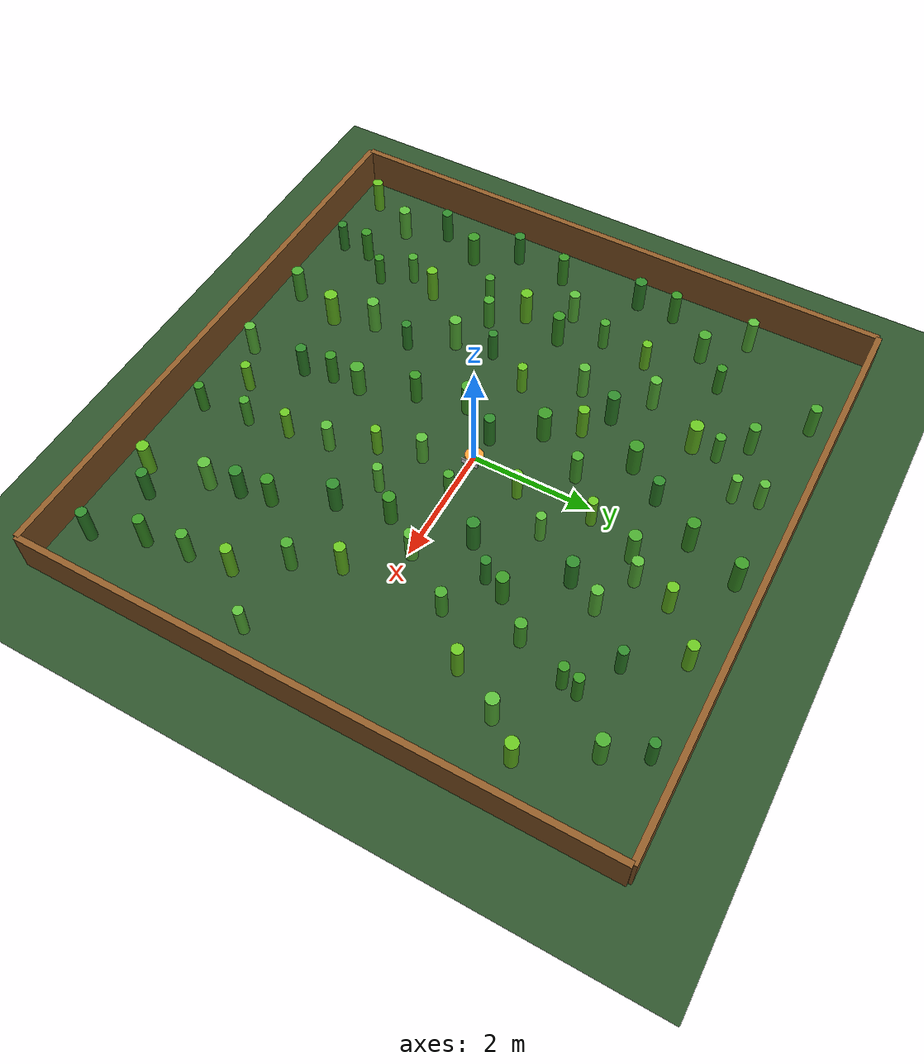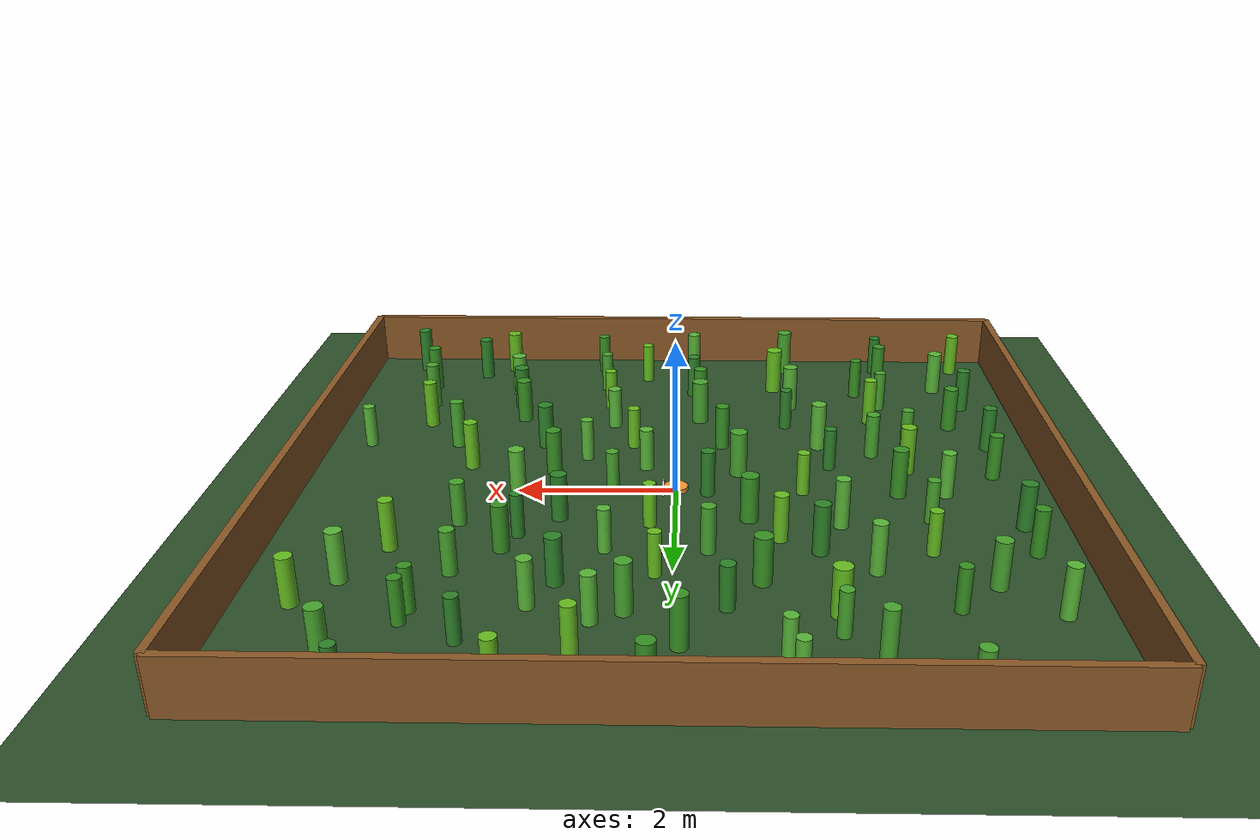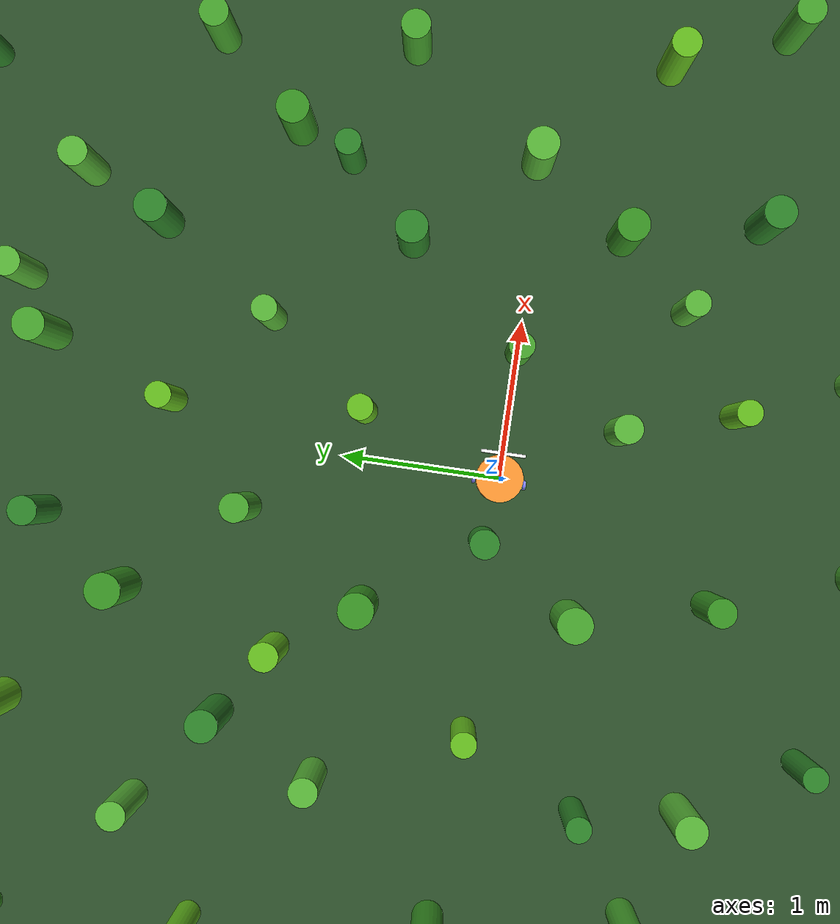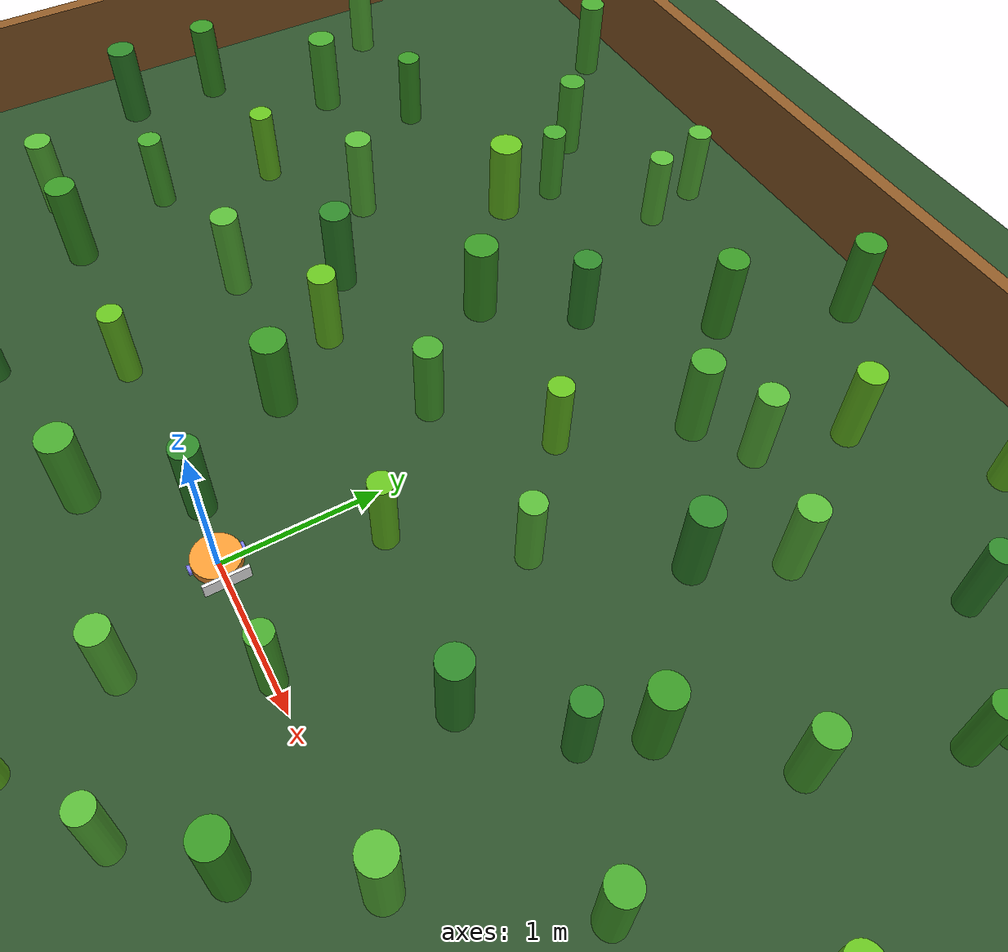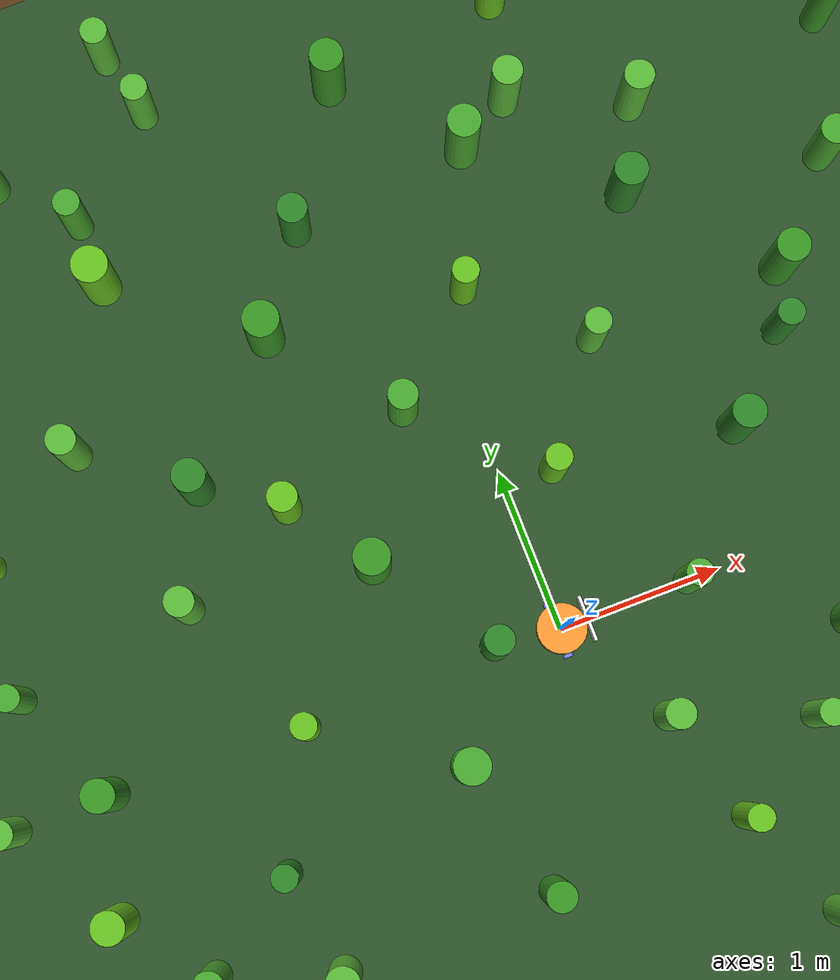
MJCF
<mujoco>
  <!--
    bamboo_scene.xml
    竹林场景：10 x 10 m 地面，四周围墙，35 根圆柱形竹子随机分布。
    起点：(-4.0, 4.0)   终点：(3.8, 0.0)
    两端各保留约 1.0 m 净空间。
  -->
  <compiler autolimits="true"/>

  <asset>
    <!-- 青绿色草地纹理 -->
    <texture name="grass" type="2d" builtin="checker" width="512" height="512"
             rgb1=".15 .28 .15" rgb2=".20 .35 .18"/>
    <material name="grass" texture="grass" texrepeat="6 6" texuniform="true" reflectance=".1"/>

    <!-- 竹竿纹理（偏黄绿棋盘） -->
    <texture name="bamboo_tex" type="2d" builtin="checker" width="64" height="256"
             rgb1=".30 .62 .22" rgb2=".42 .72 .28"/>
    <material name="bamboo_mat" texture="bamboo_tex" texrepeat="1 4" reflectance=".05"/>

    <mesh name="chasis" scale=".01 .006 .0015"
      vertex=" 9   2   0
              -10  10  10
               9  -2   0
               10  3  -10
               10 -3  -10
              -8   10 -10
              -10 -10  10
              -8  -10 -10
              -5   0   20"/>
  </asset>

  <default>
    <joint damping=".008" actuatorfrcrange="-4 4"/>
    <default class="wheel">
      <geom type="cylinder" size=".03 .01" rgba=".5 .5 1 1"/>
    </default>
    <default class="decor">
      <site type="box" rgba=".5 1 .5 1"/>
    </default>
  </default>

  <worldbody>
    <!-- 10×10 m 草地地面，以 (0,0) 为中心 -->
    <geom name="floor" type="plane" size="6 6 .01" material="grass" pos="0 0 0"/>

    <!-- ──────────────── Robot ──────────────── -->
    <body name="pusher1" pos="0 0 .03">
      <freejoint/>
      <geom name="base"
            type="cylinder"
            pos="0 0 0.03"
            size="0.15 0.03"
            rgba="1.0 0.6 0.2 1"/>
      <geom type="box" pos="0.16 0 0.03" size="0.01 0.14 0.05" rgba="1 1 1 1"/>
      <geom name="front wheel" pos="0.12 0 -.015"
            type="sphere" size=".015" condim="1" priority="1"/>
      <body name="left wheel" pos="-.02 .16 0" zaxis="0 1 0">
        <joint name="left"/>
        <geom class="wheel"/>
        <site class="decor" size=".006 .025 .012"/>
        <site class="decor" size=".025 .006 .012"/>
      </body>
      <body name="right wheel" pos="-.02 -.16 0" zaxis="0 1 0">
        <joint name="right"/>
        <geom class="wheel"/>
        <site class="decor" size=".006 .025 .012"/>
        <site class="decor" size=".025 .006 .012"/>
      </body>
    </body>

    <!-- ──────────────── 四周围墙 ──────────────── -->
    <geom name="wall_north" type="box" pos=" 0.0  4.8 0.35" size="4.8 0.05 0.35" rgba=".55 .35 .15 1"/>
    <geom name="wall_south" type="box" pos=" 0.0 -4.8 0.35" size="4.8 0.05 0.35" rgba=".55 .35 .15 1"/>
    <geom name="wall_west"  type="box" pos="-4.8  0.0 0.35" size="0.05 4.8 0.35" rgba=".55 .35 .15 1"/>
    <geom name="wall_east"  type="box" pos=" 4.8  0.0 0.35" size="0.05 4.8 0.35" rgba=".55 .35 .15 1"/>

    <!-- ── 原有排 A  y ≈ 4.4（最北，起点以南）── -->
    <geom name="bam_01" type="cylinder" pos="-3.00  4.40 0.30" size="0.09 0.30" rgba=".28 .65 .18 1" material="bamboo_mat"/>
    <geom name="bam_02" type="cylinder" pos="-1.30  4.20 0.28" size="0.08 0.28" rgba=".35 .72 .22 1" material="bamboo_mat"/>
    <geom name="bam_03" type="cylinder" pos=" 0.20  4.40 0.32" size="0.10 0.32" rgba=".22 .58 .14 1" material="bamboo_mat"/>
    <geom name="bam_04" type="cylinder" pos=" 1.70  4.30 0.30" size="0.09 0.30" rgba=".40 .75 .12 1" material="bamboo_mat"/>
    <geom name="bam_05" type="cylinder" pos=" 3.20  4.40 0.28" size="0.08 0.28" rgba=".18 .52 .16 1" material="bamboo_mat"/>

    <!-- ── 原有排 B  y ≈ 3.5 ── -->
    <geom name="bam_06" type="cylinder" pos="-2.20  3.70 0.30" size="0.09 0.30" rgba=".28 .65 .18 1" material="bamboo_mat"/>
    <geom name="bam_07" type="cylinder" pos="-1.20  3.80 0.28" size="0.08 0.28" rgba=".35 .72 .22 1" material="bamboo_mat"/>
    <geom name="bam_08" type="cylinder" pos="-0.10  3.55 0.32" size="0.10 0.32" rgba=".22 .58 .14 1" material="bamboo_mat"/>
    <geom name="bam_09" type="cylinder" pos=" 1.00  3.70 0.30" size="0.09 0.30" rgba=".40 .75 .12 1" material="bamboo_mat"/>
    <geom name="bam_10" type="cylinder" pos=" 2.20  3.50 0.28" size="0.08 0.28" rgba=".18 .52 .16 1" material="bamboo_mat"/>
    <geom name="bam_11" type="cylinder" pos=" 3.50  3.80 0.30" size="0.10 0.30" rgba=".28 .65 .18 1" material="bamboo_mat"/>

    <!-- ── 补充排 C  y ≈ 2.9（插在 B/D 之间）── -->
    <geom name="bam_12" type="cylinder" pos="-4.20  2.90 0.32" size="0.09 0.32" rgba=".35 .72 .22 1" material="bamboo_mat"/>
    <geom name="bam_13" type="cylinder" pos="-3.10  2.80 0.28" size="0.08 0.28" rgba=".22 .58 .14 1" material="bamboo_mat"/>
    <geom name="bam_14" type="cylinder" pos="-1.80  2.90 0.30" size="0.11 0.30" rgba=".40 .75 .12 1" material="bamboo_mat"/>
    <geom name="bam_15" type="cylinder" pos="-0.60  2.80 0.28" size="0.09 0.28" rgba=".18 .52 .16 1" material="bamboo_mat"/>
    <geom name="bam_16" type="cylinder" pos=" 0.50  2.90 0.32" size="0.10 0.32" rgba=".28 .65 .18 1" material="bamboo_mat"/>
    <geom name="bam_17" type="cylinder" pos=" 1.55  2.80 0.30" size="0.09 0.30" rgba=".35 .72 .22 1" material="bamboo_mat"/>
    <geom name="bam_18" type="cylinder" pos=" 2.80  2.90 0.28" size="0.08 0.28" rgba=".22 .58 .14 1" material="bamboo_mat"/>
    <geom name="bam_19" type="cylinder" pos=" 4.10  2.80 0.30" size="0.10 0.30" rgba=".40 .75 .12 1" material="bamboo_mat"/>

    <!-- ── 原有排 D  y ≈ 2.1 ── -->
    <geom name="bam_20" type="cylinder" pos="-3.60  2.30 0.30" size="0.10 0.30" rgba=".28 .65 .18 1" material="bamboo_mat"/>
    <geom name="bam_21" type="cylinder" pos="-2.30  2.00 0.32" size="0.09 0.32" rgba=".35 .72 .22 1" material="bamboo_mat"/>
    <geom name="bam_22" type="cylinder" pos="-1.00  2.25 0.30" size="0.11 0.30" rgba=".22 .58 .14 1" material="bamboo_mat"/>
    <geom name="bam_23" type="cylinder" pos=" 0.20  2.10 0.28" size="0.08 0.28" rgba=".40 .75 .12 1" material="bamboo_mat"/>
    <geom name="bam_24" type="cylinder" pos=" 1.30  2.30 0.30" size="0.10 0.30" rgba=".18 .52 .16 1" material="bamboo_mat"/>
    <geom name="bam_25" type="cylinder" pos=" 2.50  2.10 0.28" size="0.09 0.28" rgba=".28 .65 .18 1" material="bamboo_mat"/>
    <geom name="bam_26" type="cylinder" pos=" 3.70  2.30 0.32" size="0.10 0.32" rgba=".35 .72 .22 1" material="bamboo_mat"/>

    <!-- ── 补充排 E  y ≈ 1.55（插在 D/F 之间）── -->
    <geom name="bam_27" type="cylinder" pos="-4.20  1.55 0.30" size="0.09 0.30" rgba=".22 .58 .14 1" material="bamboo_mat"/>
    <geom name="bam_28" type="cylinder" pos="-3.00  1.55 0.28" size="0.08 0.28" rgba=".40 .75 .12 1" material="bamboo_mat"/>
    <geom name="bam_29" type="cylinder" pos="-1.70  1.55 0.32" size="0.10 0.32" rgba=".18 .52 .16 1" material="bamboo_mat"/>
    <geom name="bam_30" type="cylinder" pos="-0.40  1.55 0.30" size="0.09 0.30" rgba=".28 .65 .18 1" material="bamboo_mat"/>
    <geom name="bam_31" type="cylinder" pos=" 0.80  1.55 0.28" size="0.08 0.28" rgba=".35 .72 .22 1" material="bamboo_mat"/>
    <geom name="bam_32" type="cylinder" pos=" 2.00  1.55 0.30" size="0.10 0.30" rgba=".22 .58 .14 1" material="bamboo_mat"/>
    <geom name="bam_33" type="cylinder" pos=" 3.30  1.55 0.32" size="0.09 0.32" rgba=".40 .75 .12 1" material="bamboo_mat"/>

    <!-- ── 原有排 F  y ≈ 0.75（避开终点）── -->
    <geom name="bam_34" type="cylinder" pos="-4.20  0.90 0.30" size="0.10 0.30" rgba=".18 .52 .16 1" material="bamboo_mat"/>
    <geom name="bam_35" type="cylinder" pos="-3.10  0.75 0.28" size="0.08 0.28" rgba=".28 .65 .18 1" material="bamboo_mat"/>
    <geom name="bam_36" type="cylinder" pos="-2.00  0.90 0.32" size="0.09 0.32" rgba=".35 .72 .22 1" material="bamboo_mat"/>
    <geom name="bam_37" type="cylinder" pos="-0.90  0.75 0.30" size="0.11 0.30" rgba=".22 .58 .14 1" material="bamboo_mat"/>
    <geom name="bam_38" type="cylinder" pos=" 0.30  0.90 0.28" size="0.08 0.28" rgba=".40 .75 .12 1" material="bamboo_mat"/>
    <geom name="bam_39" type="cylinder" pos=" 1.40  0.75 0.30" size="0.10 0.30" rgba=".18 .52 .16 1" material="bamboo_mat"/>
    <geom name="bam_40" type="cylinder" pos=" 2.60  0.90 0.28" size="0.09 0.28" rgba=".28 .65 .18 1" material="bamboo_mat"/>

    <!-- ── 补充排 G  y ≈ 0.0（避开起点 -4.5,0.0 和终点 4.3,0.0）── -->
    <geom name="bam_41" type="cylinder" pos="-3.40  0.05 0.30" size="0.09 0.30" rgba=".35 .72 .22 1" material="bamboo_mat"/>
    <geom name="bam_42" type="cylinder" pos="-2.80  0.05 0.32" size="0.10 0.32" rgba=".22 .58 .14 1" material="bamboo_mat"/>
    <geom name="bam_43" type="cylinder" pos="-1.60  0.00 0.28" size="0.08 0.28" rgba=".40 .75 .12 1" material="bamboo_mat"/>
    <geom name="bam_44" type="cylinder" pos="-0.40  0.05 0.30" size="0.09 0.30" rgba=".18 .52 .16 1" material="bamboo_mat"/>
    <geom name="bam_45" type="cylinder" pos=" 0.80  0.00 0.28" size="0.08 0.28" rgba=".28 .65 .18 1" material="bamboo_mat"/>
    <geom name="bam_46" type="cylinder" pos=" 2.00  0.05 0.30" size="0.10 0.30" rgba=".35 .72 .22 1" material="bamboo_mat"/>

    <!-- ── 原有排 H  y ≈ -0.7（避开终点）── -->
    <geom name="bam_47" type="cylinder" pos="-4.10 -0.50 0.30" size="0.09 0.30" rgba=".22 .58 .14 1" material="bamboo_mat"/>
    <geom name="bam_48" type="cylinder" pos="-3.00 -0.65 0.32" size="0.10 0.32" rgba=".40 .75 .12 1" material="bamboo_mat"/>
    <geom name="bam_49" type="cylinder" pos="-2.00 -0.75 0.28" size="0.08 0.28" rgba=".18 .52 .16 1" material="bamboo_mat"/>
    <geom name="bam_50" type="cylinder" pos="-0.80 -0.55 0.30" size="0.11 0.30" rgba=".28 .65 .18 1" material="bamboo_mat"/>
    <geom name="bam_51" type="cylinder" pos=" 0.40 -0.70 0.28" size="0.09 0.28" rgba=".35 .72 .22 1" material="bamboo_mat"/>
    <geom name="bam_52" type="cylinder" pos=" 1.60 -0.55 0.30" size="0.10 0.30" rgba=".22 .58 .14 1" material="bamboo_mat"/>
    <geom name="bam_53" type="cylinder" pos=" 2.70 -0.70 0.32" size="0.09 0.32" rgba=".40 .75 .12 1" material="bamboo_mat"/>

    <!-- ── 补充排 I  y ≈ -1.4 ── -->
    <geom name="bam_54" type="cylinder" pos="-4.20 -1.40 0.30" size="0.09 0.30" rgba=".18 .52 .16 1" material="bamboo_mat"/>
    <geom name="bam_55" type="cylinder" pos="-3.10 -1.40 0.28" size="0.08 0.28" rgba=".28 .65 .18 1" material="bamboo_mat"/>
    <geom name="bam_56" type="cylinder" pos="-1.90 -1.40 0.32" size="0.10 0.32" rgba=".35 .72 .22 1" material="bamboo_mat"/>
    <geom name="bam_57" type="cylinder" pos="-0.60 -1.40 0.30" size="0.09 0.30" rgba=".22 .58 .14 1" material="bamboo_mat"/>
    <geom name="bam_58" type="cylinder" pos=" 0.60 -1.40 0.28" size="0.08 0.28" rgba=".40 .75 .12 1" material="bamboo_mat"/>
    <geom name="bam_59" type="cylinder" pos=" 1.80 -1.40 0.30" size="0.10 0.30" rgba=".18 .52 .16 1" material="bamboo_mat"/>
    <geom name="bam_60" type="cylinder" pos=" 3.00 -1.40 0.32" size="0.09 0.32" rgba=".28 .65 .18 1" material="bamboo_mat"/>
    <geom name="bam_61" type="cylinder" pos=" 4.20 -1.40 0.28" size="0.08 0.28" rgba=".35 .72 .22 1" material="bamboo_mat"/>

    <!-- ── 原有排 J  y ≈ -2.1 ── -->
    <geom name="bam_62" type="cylinder" pos="-3.80 -2.10 0.30" size="0.10 0.30" rgba=".22 .58 .14 1" material="bamboo_mat"/>
    <geom name="bam_63" type="cylinder" pos="-2.70 -2.30 0.32" size="0.09 0.32" rgba=".40 .75 .12 1" material="bamboo_mat"/>
    <geom name="bam_64" type="cylinder" pos="-1.50 -2.10 0.28" size="0.08 0.28" rgba=".18 .52 .16 1" material="bamboo_mat"/>
    <geom name="bam_65" type="cylinder" pos="-0.30 -2.30 0.30" size="0.11 0.30" rgba=".28 .65 .18 1" material="bamboo_mat"/>
    <geom name="bam_66" type="cylinder" pos=" 0.90 -2.10 0.28" size="0.09 0.28" rgba=".35 .72 .22 1" material="bamboo_mat"/>
    <geom name="bam_67" type="cylinder" pos=" 2.20 -2.30 0.30" size="0.10 0.30" rgba=".22 .58 .14 1" material="bamboo_mat"/>
    <geom name="bam_68" type="cylinder" pos=" 3.50 -2.10 0.32" size="0.09 0.32" rgba=".40 .75 .12 1" material="bamboo_mat"/>

    <!-- ── 补充排 K  y ≈ -2.8 ── -->
    <geom name="bam_69" type="cylinder" pos="-4.10 -2.80 0.30" size="0.09 0.30" rgba=".18 .52 .16 1" material="bamboo_mat"/>
    <geom name="bam_70" type="cylinder" pos="-2.90 -2.80 0.28" size="0.08 0.28" rgba=".28 .65 .18 1" material="bamboo_mat"/>
    <geom name="bam_71" type="cylinder" pos="-1.60 -2.80 0.32" size="0.10 0.32" rgba=".35 .72 .22 1" material="bamboo_mat"/>
    <geom name="bam_72" type="cylinder" pos="-0.30 -2.80 0.30" size="0.09 0.30" rgba=".22 .58 .14 1" material="bamboo_mat"/>
    <geom name="bam_73" type="cylinder" pos=" 1.00 -2.80 0.28" size="0.08 0.28" rgba=".40 .75 .12 1" material="bamboo_mat"/>
    <geom name="bam_74" type="cylinder" pos=" 2.30 -2.80 0.30" size="0.10 0.30" rgba=".18 .52 .16 1" material="bamboo_mat"/>
    <geom name="bam_75" type="cylinder" pos=" 3.60 -2.80 0.32" size="0.09 0.32" rgba=".28 .65 .18 1" material="bamboo_mat"/>

    <!-- ── 原有排 L  y ≈ -3.5 ── -->
    <geom name="bam_76" type="cylinder" pos="-3.80 -3.50 0.30" size="0.10 0.30" rgba=".35 .72 .22 1" material="bamboo_mat"/>
    <geom name="bam_77" type="cylinder" pos="-2.60 -3.30 0.28" size="0.08 0.28" rgba=".22 .58 .14 1" material="bamboo_mat"/>
    <geom name="bam_78" type="cylinder" pos="-1.40 -3.50 0.32" size="0.11 0.32" rgba=".40 .75 .12 1" material="bamboo_mat"/>
    <geom name="bam_79" type="cylinder" pos="-0.20 -3.30 0.30" size="0.09 0.30" rgba=".18 .52 .16 1" material="bamboo_mat"/>
    <geom name="bam_80" type="cylinder" pos=" 1.10 -3.50 0.28" size="0.08 0.28" rgba=".28 .65 .18 1" material="bamboo_mat"/>
    <geom name="bam_81" type="cylinder" pos=" 2.40 -3.30 0.30" size="0.10 0.30" rgba=".35 .72 .22 1" material="bamboo_mat"/>
    <geom name="bam_82" type="cylinder" pos=" 3.70 -3.50 0.32" size="0.09 0.32" rgba=".22 .58 .14 1" material="bamboo_mat"/>

    <!-- ── 最南排 M  y ≈ -4.3 ── -->
    <geom name="bam_83" type="cylinder" pos="-4.20 -4.30 0.30" size="0.09 0.30" rgba=".40 .75 .12 1" material="bamboo_mat"/>
    <geom name="bam_84" type="cylinder" pos="-3.00 -4.30 0.28" size="0.08 0.28" rgba=".18 .52 .16 1" material="bamboo_mat"/>
    <geom name="bam_85" type="cylinder" pos="-1.60 -4.30 0.32" size="0.10 0.32" rgba=".28 .65 .18 1" material="bamboo_mat"/>
    <geom name="bam_86" type="cylinder" pos="-0.20 -4.30 0.30" size="0.09 0.30" rgba=".35 .72 .22 1" material="bamboo_mat"/>
    <geom name="bam_87" type="cylinder" pos=" 1.20 -4.30 0.28" size="0.08 0.28" rgba=".22 .58 .14 1" material="bamboo_mat"/>
    <geom name="bam_88" type="cylinder" pos=" 2.60 -4.30 0.30" size="0.10 0.30" rgba=".40 .75 .12 1" material="bamboo_mat"/>
    <geom name="bam_89" type="cylinder" pos=" 4.00 -4.30 0.32" size="0.09 0.32" rgba=".18 .52 .16 1" material="bamboo_mat"/>

    <!-- ── 散点补充（进一步填密）── -->
    <geom name="bam_90" type="cylinder" pos="-1.80  3.30 0.28" size="0.08 0.28" rgba=".28 .65 .18 1" material="bamboo_mat"/>
    <geom name="bam_91" type="cylinder" pos=" 0.85  3.10 0.30" size="0.09 0.30" rgba=".35 .72 .22 1" material="bamboo_mat"/>
    <geom name="bam_92" type="cylinder" pos=" 2.85  3.15 0.28" size="0.08 0.28" rgba=".22 .58 .14 1" material="bamboo_mat"/>
    <geom name="bam_93" type="cylinder" pos="-1.25  1.25 0.30" size="0.09 0.30" rgba=".40 .75 .12 1" material="bamboo_mat"/>
    <geom name="bam_94" type="cylinder" pos=" 1.85  1.20 0.28" size="0.08 0.28" rgba=".18 .52 .16 1" material="bamboo_mat"/>
    <geom name="bam_95" type="cylinder" pos="-2.60 -1.15 0.30" size="0.09 0.30" rgba=".28 .65 .18 1" material="bamboo_mat"/>
    <geom name="bam_96" type="cylinder" pos=" 1.20 -1.00 0.28" size="0.08 0.28" rgba=".35 .72 .22 1" material="bamboo_mat"/>
    <geom name="bam_97" type="cylinder" pos="-3.00 -3.80 0.30" size="0.09 0.30" rgba=".22 .58 .14 1" material="bamboo_mat"/>
    <geom name="bam_98" type="cylinder" pos=" 0.50 -3.90 0.28" size="0.08 0.28" rgba=".40 .75 .12 1" material="bamboo_mat"/>
    <geom name="bam_99" type="cylinder" pos=" 3.00 -4.00 0.30" size="0.09 0.30" rgba=".18 .52 .16 1" material="bamboo_mat"/>

  </worldbody>

  <!-- differential-drive tendon coupling -->
  <tendon>
    <fixed name="forward">
      <joint joint="left"  coef=".5"/>
      <joint joint="right" coef=".5"/>
    </fixed>
    <fixed name="turn">
      <joint joint="left"  coef="-.5"/>
      <joint joint="right" coef=".5"/>
    </fixed>
  </tendon>

  <actuator>
    <motor name="forward" tendon="forward" ctrlrange="-2 2"/>
    <motor name="turn"    tendon="turn"    ctrlrange="-2 2"/>
  </actuator>

  <sensor>
    <jointactuatorfrc name="right" joint="right"/>
    <jointactuatorfrc name="left"  joint="left"/>
  </sensor>
</mujoco>
